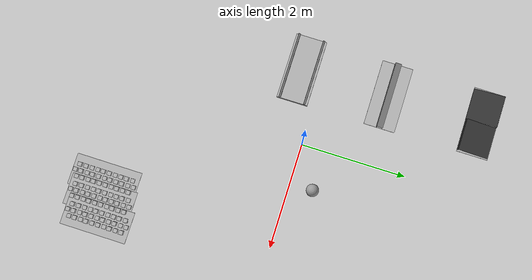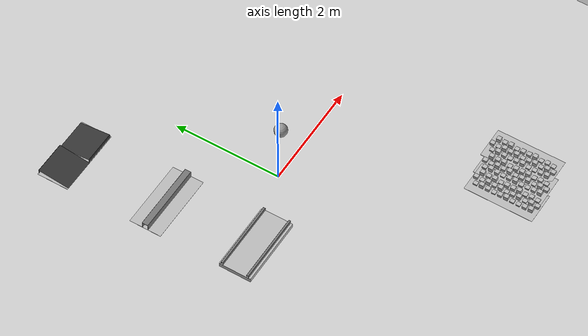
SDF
<sdf version="1.6">
 <world name="default">
  <light name="sun" type="directional">
   <pose>0 0 10 0 -0 0</pose>
   <diffuse>0.8 0.8 0.8 1</diffuse>
   <specular>0.1 0.1 0.1 1</specular>
   <attenuation>
    <range>1000</range>
    <constant>0.9</constant>
    <linear>0.01</linear>
    <quadratic>0.001</quadratic>
   </attenuation>
   <direction>-0.5 0.5 -1</direction>
  </light>
  <model name="ground_plane">
   <static>1</static>
   <link name="link">
    <collision name="collision">
     <geometry><plane><normal>0 0 1</normal><size>100 100</size></plane></geometry>
     <surface><friction><ode><mu>100</mu><mu2>50</mu2></ode></friction></surface>
    </collision>
    <visual name="visual">
     <cast_shadows>0</cast_shadows>
     <geometry><plane><normal>0 0 1</normal><size>100 100</size></plane></geometry>
     <material>
      <script><uri>file://media/materials/scripts/gazebo.material</uri><name>Gazebo/Grey</name></script>
     </material>
    </visual>
   </link>
  </model>
  <gravity>0 0 -9.8</gravity>
  <magnetic_field>6e-06 2.3e-05 -4.2e-05</magnetic_field>
  <atmosphere type="adiabatic"/>
  <physics name="default_physics" default="0" type="ode">
   <max_step_size>0.001</max_step_size>
   <real_time_factor>1</real_time_factor>
   <real_time_update_rate>1000</real_time_update_rate>
  </physics>
  <scene><ambient>0.4 0.4 0.4 1</ambient><background>0.7 0.7 0.7 1</background><shadows>1</shadows></scene>
  <spherical_coordinates>
   <surface_model>EARTH_WGS84</surface_model>
   <latitude_deg>0</latitude_deg>
   <longitude_deg>0</longitude_deg>
   <elevation>0</elevation>
   <heading_deg>0</heading_deg>
  </spherical_coordinates>
  <model name="frc2016_roughterrain">
   <static>1</static>
   <link name="link">
    <visual name="platform">
     <pose>0 0 0.08269 0 -0 0</pose>
     <geometry><box><size>1.27 0.5969 0.003175</size></box></geometry>
    </visual>
    <collision name="platform">
     <pose>0 0 0.08269 0 -0 0</pose>
     <geometry><box><size>1.27 0.5969 0.003175</size></box></geometry>
    </collision>
    <visual name="row1_block1_sm">
     <pose>0.51435 0.1143 0.09698 0 -0 0</pose>
     <geometry><box><size>0.0762 0.0762 0.0254</size></box></geometry>
    </visual>
    <collision name="row1_block1_sm">
     <pose>0.51435 0.1143 0.09698 0 -0 0</pose>
     <geometry><box><size>0.0762 0.0762 0.0254</size></box></geometry>
    </collision>
    <visual name="row1_block2_lg">
     <pose>0.40005 0.1143 0.12238 0 -0 0</pose>
     <geometry><box><size>0.0762 0.0762 0.0762</size></box></geometry>
    </visual>
    <collision name="row1_block2_lg">
     <pose>0.40005 0.1143 0.12238 0 -0 0</pose>
     <geometry><box><size>0.0762 0.0762 0.0762</size></box></geometry>
    </collision>
    <visual name="row1_block3_md">
     <pose>0.28575 0.1143 0.10968 0 -0 0</pose>
     <geometry><box><size>0.0762 0.0762 0.0508</size></box></geometry>
    </visual>
    <collision name="row1_block3_md">
     <pose>0.28575 0.1143 0.10968 0 -0 0</pose>
     <geometry><box><size>0.0762 0.0762 0.0508</size></box></geometry>
    </collision>
    <visual name="row1_block4_sm">
     <pose>0.17145 0.1143 0.09698 0 -0 0</pose>
     <geometry><box><size>0.0762 0.0762 0.0254</size></box></geometry>
    </visual>
    <collision name="row1_block4_sm">
     <pose>0.17145 0.1143 0.09698 0 -0 0</pose>
     <geometry><box><size>0.0762 0.0762 0.0254</size></box></geometry>
    </collision>
    <visual name="row1_block5_md">
     <pose>0.05715 0.1143 0.10968 0 -0 0</pose>
     <geometry><box><size>0.0762 0.0762 0.0508</size></box></geometry>
    </visual>
    <collision name="row1_block5_md">
     <pose>0.05715 0.1143 0.10968 0 -0 0</pose>
     <geometry><box><size>0.0762 0.0762 0.0508</size></box></geometry>
    </collision>
    <visual name="row1_block6_lg">
     <pose>-0.05715 0.1143 0.12238 0 -0 0</pose>
     <geometry><box><size>0.0762 0.0762 0.0762</size></box></geometry>
    </visual>
    <collision name="row1_block6_lg">
     <pose>-0.05715 0.1143 0.12238 0 -0 0</pose>
     <geometry><box><size>0.0762 0.0762 0.0762</size></box></geometry>
    </collision>
    <visual name="row1_block7_sm">
     <pose>-0.17145 0.1143 0.09698 0 -0 0</pose>
     <geometry><box><size>0.0762 0.0762 0.0254</size></box></geometry>
    </visual>
    <collision name="row1_block7_sm">
     <pose>-0.17145 0.1143 0.09698 0 -0 0</pose>
     <geometry><box><size>0.0762 0.0762 0.0254</size></box></geometry>
    </collision>
    <visual name="row1_block8_sm">
     <pose>-0.28575 0.1143 0.09698 0 -0 0</pose>
     <geometry><box><size>0.0762 0.0762 0.0254</size></box></geometry>
    </visual>
    <collision name="row1_block8_sm">
     <pose>-0.28575 0.1143 0.09698 0 -0 0</pose>
     <geometry><box><size>0.0762 0.0762 0.0254</size></box></geometry>
    </collision>
    <visual name="row1_block9_md">
     <pose>-0.40005 0.1143 0.10968 0 -0 0</pose>
     <geometry><box><size>0.0762 0.0762 0.0508</size></box></geometry>
    </visual>
    <collision name="row1_block9_md">
     <pose>-0.40005 0.1143 0.10968 0 -0 0</pose>
     <geometry><box><size>0.0762 0.0762 0.0508</size></box></geometry>
    </collision>
    <visual name="row1_block10_lg">
     <pose>-0.51435 0.1143 0.12238 0 -0 0</pose>
     <geometry><box><size>0.0762 0.0762 0.0762</size></box></geometry>
    </visual>
    <collision name="row1_block10_lg">
     <pose>-0.51435 0.1143 0.12238 0 -0 0</pose>
     <geometry><box><size>0.0762 0.0762 0.0762</size></box></geometry>
    </collision>
    <visual name="row2_block1_md">
     <pose>0.5715 0 0.10968 0 -0 0</pose>
     <geometry><box><size>0.0762 0.0762 0.0508</size></box></geometry>
    </visual>
    <collision name="row2_block1_md">
     <pose>0.5715 0 0.10968 0 -0 0</pose>
     <geometry><box><size>0.0762 0.0762 0.0508</size></box></geometry>
    </collision>
    <visual name="row2_block2_sm">
     <pose>0.4572 0 0.09698 0 -0 0</pose>
     <geometry><box><size>0.0762 0.0762 0.0254</size></box></geometry>
    </visual>
    <collision name="row2_block2_sm">
     <pose>0.4572 0 0.09698 0 -0 0</pose>
     <geometry><box><size>0.0762 0.0762 0.0254</size></box></geometry>
    </collision>
    <visual name="row2_block3_lg">
     <pose>0.3429 0 0.12238 0 -0 0</pose>
     <geometry><box><size>0.0762 0.0762 0.0762</size></box></geometry>
    </visual>
    <collision name="row2_block3_lg">
     <pose>0.3429 0 0.12238 0 -0 0</pose>
     <geometry><box><size>0.0762 0.0762 0.0762</size></box></geometry>
    </collision>
    <visual name="row2_block4_md">
     <pose>0.2286 0 0.10968 0 -0 0</pose>
     <geometry><box><size>0.0762 0.0762 0.0508</size></box></geometry>
    </visual>
    <collision name="row2_block4_md">
     <pose>0.2286 0 0.10968 0 -0 0</pose>
     <geometry><box><size>0.0762 0.0762 0.0508</size></box></geometry>
    </collision>
    <visual name="row2_block5_lg">
     <pose>0.1143 0 0.12238 0 -0 0</pose>
     <geometry><box><size>0.0762 0.0762 0.0762</size></box></geometry>
    </visual>
    <collision name="row2_block5_lg">
     <pose>0.1143 0 0.12238 0 -0 0</pose>
     <geometry><box><size>0.0762 0.0762 0.0762</size></box></geometry>
    </collision>
    <visual name="row2_block6_sm">
     <pose>0 0 0.09698 0 -0 0</pose>
     <geometry><box><size>0.0762 0.0762 0.0254</size></box></geometry>
    </visual>
    <collision name="row2_block6_sm">
     <pose>0 0 0.09698 0 -0 0</pose>
     <geometry><box><size>0.0762 0.0762 0.0254</size></box></geometry>
    </collision>
    <visual name="row2_block7_md">
     <pose>-0.1143 0 0.10968 0 -0 0</pose>
     <geometry><box><size>0.0762 0.0762 0.0508</size></box></geometry>
    </visual>
    <collision name="row2_block7_md">
     <pose>-0.1143 0 0.10968 0 -0 0</pose>
     <geometry><box><size>0.0762 0.0762 0.0508</size></box></geometry>
    </collision>
    <visual name="row2_block8_lg">
     <pose>-0.2286 0 0.12238 0 -0 0</pose>
     <geometry><box><size>0.0762 0.0762 0.0762</size></box></geometry>
    </visual>
    <collision name="row2_block8_lg">
     <pose>-0.2286 0 0.12238 0 -0 0</pose>
     <geometry><box><size>0.0762 0.0762 0.0762</size></box></geometry>
    </collision>
    <visual name="row2_block9_sm">
     <pose>-0.3429 0 0.09698 0 -0 0</pose>
     <geometry><box><size>0.0762 0.0762 0.0254</size></box></geometry>
    </visual>
    <collision name="row2_block9_sm">
     <pose>-0.3429 0 0.09698 0 -0 0</pose>
     <geometry><box><size>0.0762 0.0762 0.0254</size></box></geometry>
    </collision>
    <visual name="row2_block10_lg">
     <pose>-0.4572 0 0.12238 0 -0 0</pose>
     <geometry><box><size>0.0762 0.0762 0.0762</size></box></geometry>
    </visual>
    <collision name="row2_block10_lg">
     <pose>-0.4572 0 0.12238 0 -0 0</pose>
     <geometry><box><size>0.0762 0.0762 0.0762</size></box></geometry>
    </collision>
    <visual name="row2_block11_md">
     <pose>-0.5715 0 0.10968 0 -0 0</pose>
     <geometry><box><size>0.0762 0.0762 0.0508</size></box></geometry>
    </visual>
    <collision name="row2_block11_md">
     <pose>-0.5715 0 0.10968 0 -0 0</pose>
     <geometry><box><size>0.0762 0.0762 0.0508</size></box></geometry>
    </collision>
    <visual name="row3_block1_lg">
     <pose>0.51435 -0.1143 0.12238 0 -0 0</pose>
     <geometry><box><size>0.0762 0.0762 0.0762</size></box></geometry>
    </visual>
    <collision name="row3_block1_lg">
     <pose>0.51435 -0.1143 0.12238 0 -0 0</pose>
     <geometry><box><size>0.0762 0.0762 0.0762</size></box></geometry>
    </collision>
    <visual name="row3_block2_md">
     <pose>0.40005 -0.1143 0.10968 0 -0 0</pose>
     <geometry><box><size>0.0762 0.0762 0.0508</size></box></geometry>
    </visual>
    <collision name="row3_block2_md">
     <pose>0.40005 -0.1143 0.10968 0 -0 0</pose>
     <geometry><box><size>0.0762 0.0762 0.0508</size></box></geometry>
    </collision>
    <visual name="row3_block3_lg">
     <pose>0.28575 -0.1143 0.12238 0 -0 0</pose>
     <geometry><box><size>0.0762 0.0762 0.0762</size></box></geometry>
    </visual>
    <collision name="row3_block3_lg">
     <pose>0.28575 -0.1143 0.12238 0 -0 0</pose>
     <geometry><box><size>0.0762 0.0762 0.0762</size></box></geometry>
    </collision>
    <visual name="row3_block4_sm">
     <pose>0.17145 -0.1143 0.09698 0 -0 0</pose>
     <geometry><box><size>0.0762 0.0762 0.0254</size></box></geometry>
    </visual>
    <collision name="row3_block4_sm">
     <pose>0.17145 -0.1143 0.09698 0 -0 0</pose>
     <geometry><box><size>0.0762 0.0762 0.0254</size></box></geometry>
    </collision>
    <visual name="row3_block5_md">
     <pose>0.05715 -0.1143 0.10968 0 -0 0</pose>
     <geometry><box><size>0.0762 0.0762 0.0508</size></box></geometry>
    </visual>
    <collision name="row3_block5_md">
     <pose>0.05715 -0.1143 0.10968 0 -0 0</pose>
     <geometry><box><size>0.0762 0.0762 0.0508</size></box></geometry>
    </collision>
    <visual name="row3_block6_md">
     <pose>-0.05715 -0.1143 0.10968 0 -0 0</pose>
     <geometry><box><size>0.0762 0.0762 0.0508</size></box></geometry>
    </visual>
    <collision name="row3_block6_md">
     <pose>-0.05715 -0.1143 0.10968 0 -0 0</pose>
     <geometry><box><size>0.0762 0.0762 0.0508</size></box></geometry>
    </collision>
    <visual name="row3_block7_lg">
     <pose>-0.17145 -0.1143 0.12238 0 -0 0</pose>
     <geometry><box><size>0.0762 0.0762 0.0762</size></box></geometry>
    </visual>
    <collision name="row3_block7_lg">
     <pose>-0.17145 -0.1143 0.12238 0 -0 0</pose>
     <geometry><box><size>0.0762 0.0762 0.0762</size></box></geometry>
    </collision>
    <visual name="row3_block8_sm">
     <pose>-0.28575 -0.1143 0.09698 0 -0 0</pose>
     <geometry><box><size>0.0762 0.0762 0.0254</size></box></geometry>
    </visual>
    <collision name="row3_block8_sm">
     <pose>-0.28575 -0.1143 0.09698 0 -0 0</pose>
     <geometry><box><size>0.0762 0.0762 0.0254</size></box></geometry>
    </collision>
    <visual name="row3_block9_md">
     <pose>-0.40005 -0.1143 0.10968 0 -0 0</pose>
     <geometry><box><size>0.0762 0.0762 0.0508</size></box></geometry>
    </visual>
    <collision name="row3_block9_md">
     <pose>-0.40005 -0.1143 0.10968 0 -0 0</pose>
     <geometry><box><size>0.0762 0.0762 0.0508</size></box></geometry>
    </collision>
    <visual name="row3_block10_sm">
     <pose>-0.51435 -0.1143 0.09698 0 -0 0</pose>
     <geometry><box><size>0.0762 0.0762 0.0254</size></box></geometry>
    </visual>
    <collision name="row3_block10_sm">
     <pose>-0.51435 -0.1143 0.09698 0 -0 0</pose>
     <geometry><box><size>0.0762 0.0762 0.0254</size></box></geometry>
    </collision>
   </link>
   <pose>1.70324 -3.32243 -0.086398 0 -0 1.56747</pose>
  </model>
  <model name="frc2016_roughterrain_clone">
   <static>1</static>
   <link name="link">
    <visual name="platform">
     <pose>0 0 0.08269 0 -0 0</pose>
     <geometry><box><size>1.27 0.5969 0.003175</size></box></geometry>
    </visual>
    <collision name="platform">
     <pose>0 0 0.08269 0 -0 0</pose>
     <geometry><box><size>1.27 0.5969 0.003175</size></box></geometry>
    </collision>
    <visual name="row1_block1_sm">
     <pose>0.51435 0.1143 0.09698 0 -0 0</pose>
     <geometry><box><size>0.0762 0.0762 0.0254</size></box></geometry>
    </visual>
    <collision name="row1_block1_sm">
     <pose>0.51435 0.1143 0.09698 0 -0 0</pose>
     <geometry><box><size>0.0762 0.0762 0.0254</size></box></geometry>
    </collision>
    <visual name="row1_block2_lg">
     <pose>0.40005 0.1143 0.12238 0 -0 0</pose>
     <geometry><box><size>0.0762 0.0762 0.0762</size></box></geometry>
    </visual>
    <collision name="row1_block2_lg">
     <pose>0.40005 0.1143 0.12238 0 -0 0</pose>
     <geometry><box><size>0.0762 0.0762 0.0762</size></box></geometry>
    </collision>
    <visual name="row1_block3_md">
     <pose>0.28575 0.1143 0.10968 0 -0 0</pose>
     <geometry><box><size>0.0762 0.0762 0.0508</size></box></geometry>
    </visual>
    <collision name="row1_block3_md">
     <pose>0.28575 0.1143 0.10968 0 -0 0</pose>
     <geometry><box><size>0.0762 0.0762 0.0508</size></box></geometry>
    </collision>
    <visual name="row1_block4_sm">
     <pose>0.17145 0.1143 0.09698 0 -0 0</pose>
     <geometry><box><size>0.0762 0.0762 0.0254</size></box></geometry>
    </visual>
    <collision name="row1_block4_sm">
     <pose>0.17145 0.1143 0.09698 0 -0 0</pose>
     <geometry><box><size>0.0762 0.0762 0.0254</size></box></geometry>
    </collision>
    <visual name="row1_block5_md">
     <pose>0.05715 0.1143 0.10968 0 -0 0</pose>
     <geometry><box><size>0.0762 0.0762 0.0508</size></box></geometry>
    </visual>
    <collision name="row1_block5_md">
     <pose>0.05715 0.1143 0.10968 0 -0 0</pose>
     <geometry><box><size>0.0762 0.0762 0.0508</size></box></geometry>
    </collision>
    <visual name="row1_block6_lg">
     <pose>-0.05715 0.1143 0.12238 0 -0 0</pose>
     <geometry><box><size>0.0762 0.0762 0.0762</size></box></geometry>
    </visual>
    <collision name="row1_block6_lg">
     <pose>-0.05715 0.1143 0.12238 0 -0 0</pose>
     <geometry><box><size>0.0762 0.0762 0.0762</size></box></geometry>
    </collision>
    <visual name="row1_block7_sm">
     <pose>-0.17145 0.1143 0.09698 0 -0 0</pose>
     <geometry><box><size>0.0762 0.0762 0.0254</size></box></geometry>
    </visual>
    <collision name="row1_block7_sm">
     <pose>-0.17145 0.1143 0.09698 0 -0 0</pose>
     <geometry><box><size>0.0762 0.0762 0.0254</size></box></geometry>
    </collision>
    <visual name="row1_block8_sm">
     <pose>-0.28575 0.1143 0.09698 0 -0 0</pose>
     <geometry><box><size>0.0762 0.0762 0.0254</size></box></geometry>
    </visual>
    <collision name="row1_block8_sm">
     <pose>-0.28575 0.1143 0.09698 0 -0 0</pose>
     <geometry><box><size>0.0762 0.0762 0.0254</size></box></geometry>
    </collision>
    <visual name="row1_block9_md">
     <pose>-0.40005 0.1143 0.10968 0 -0 0</pose>
     <geometry><box><size>0.0762 0.0762 0.0508</size></box></geometry>
    </visual>
    <collision name="row1_block9_md">
     <pose>-0.40005 0.1143 0.10968 0 -0 0</pose>
     <geometry><box><size>0.0762 0.0762 0.0508</size></box></geometry>
    </collision>
    <visual name="row1_block10_lg">
     <pose>-0.51435 0.1143 0.12238 0 -0 0</pose>
     <geometry><box><size>0.0762 0.0762 0.0762</size></box></geometry>
    </visual>
    <collision name="row1_block10_lg">
     <pose>-0.51435 0.1143 0.12238 0 -0 0</pose>
     <geometry><box><size>0.0762 0.0762 0.0762</size></box></geometry>
    </collision>
    <visual name="row2_block1_md">
     <pose>0.5715 0 0.10968 0 -0 0</pose>
     <geometry><box><size>0.0762 0.0762 0.0508</size></box></geometry>
    </visual>
    <collision name="row2_block1_md">
     <pose>0.5715 0 0.10968 0 -0 0</pose>
     <geometry><box><size>0.0762 0.0762 0.0508</size></box></geometry>
    </collision>
    <visual name="row2_block2_sm">
     <pose>0.4572 0 0.09698 0 -0 0</pose>
     <geometry><box><size>0.0762 0.0762 0.0254</size></box></geometry>
    </visual>
    <collision name="row2_block2_sm">
     <pose>0.4572 0 0.09698 0 -0 0</pose>
     <geometry><box><size>0.0762 0.0762 0.0254</size></box></geometry>
    </collision>
    <visual name="row2_block3_lg">
     <pose>0.3429 0 0.12238 0 -0 0</pose>
     <geometry><box><size>0.0762 0.0762 0.0762</size></box></geometry>
    </visual>
    <collision name="row2_block3_lg">
     <pose>0.3429 0 0.12238 0 -0 0</pose>
     <geometry><box><size>0.0762 0.0762 0.0762</size></box></geometry>
    </collision>
    <visual name="row2_block4_md">
     <pose>0.2286 0 0.10968 0 -0 0</pose>
     <geometry><box><size>0.0762 0.0762 0.0508</size></box></geometry>
    </visual>
    <collision name="row2_block4_md">
     <pose>0.2286 0 0.10968 0 -0 0</pose>
     <geometry><box><size>0.0762 0.0762 0.0508</size></box></geometry>
    </collision>
    <visual name="row2_block5_lg">
     <pose>0.1143 0 0.12238 0 -0 0</pose>
     <geometry><box><size>0.0762 0.0762 0.0762</size></box></geometry>
    </visual>
    <collision name="row2_block5_lg">
     <pose>0.1143 0 0.12238 0 -0 0</pose>
     <geometry><box><size>0.0762 0.0762 0.0762</size></box></geometry>
    </collision>
    <visual name="row2_block6_sm">
     <pose>0 0 0.09698 0 -0 0</pose>
     <geometry><box><size>0.0762 0.0762 0.0254</size></box></geometry>
    </visual>
    <collision name="row2_block6_sm">
     <pose>0 0 0.09698 0 -0 0</pose>
     <geometry><box><size>0.0762 0.0762 0.0254</size></box></geometry>
    </collision>
    <visual name="row2_block7_md">
     <pose>-0.1143 0 0.10968 0 -0 0</pose>
     <geometry><box><size>0.0762 0.0762 0.0508</size></box></geometry>
    </visual>
    <collision name="row2_block7_md">
     <pose>-0.1143 0 0.10968 0 -0 0</pose>
     <geometry><box><size>0.0762 0.0762 0.0508</size></box></geometry>
    </collision>
    <visual name="row2_block8_lg">
     <pose>-0.2286 0 0.12238 0 -0 0</pose>
     <geometry><box><size>0.0762 0.0762 0.0762</size></box></geometry>
    </visual>
    <collision name="row2_block8_lg">
     <pose>-0.2286 0 0.12238 0 -0 0</pose>
     <geometry><box><size>0.0762 0.0762 0.0762</size></box></geometry>
    </collision>
    <visual name="row2_block9_sm">
     <pose>-0.3429 0 0.09698 0 -0 0</pose>
     <geometry><box><size>0.0762 0.0762 0.0254</size></box></geometry>
    </visual>
    <collision name="row2_block9_sm">
     <pose>-0.3429 0 0.09698 0 -0 0</pose>
     <geometry><box><size>0.0762 0.0762 0.0254</size></box></geometry>
    </collision>
    <visual name="row2_block10_lg">
     <pose>-0.4572 0 0.12238 0 -0 0</pose>
     <geometry><box><size>0.0762 0.0762 0.0762</size></box></geometry>
    </visual>
    <collision name="row2_block10_lg">
     <pose>-0.4572 0 0.12238 0 -0 0</pose>
     <geometry><box><size>0.0762 0.0762 0.0762</size></box></geometry>
    </collision>
    <visual name="row2_block11_md">
     <pose>-0.5715 0 0.10968 0 -0 0</pose>
     <geometry><box><size>0.0762 0.0762 0.0508</size></box></geometry>
    </visual>
    <collision name="row2_block11_md">
     <pose>-0.5715 0 0.10968 0 -0 0</pose>
     <geometry><box><size>0.0762 0.0762 0.0508</size></box></geometry>
    </collision>
    <visual name="row3_block1_lg">
     <pose>0.51435 -0.1143 0.12238 0 -0 0</pose>
     <geometry><box><size>0.0762 0.0762 0.0762</size></box></geometry>
    </visual>
    <collision name="row3_block1_lg">
     <pose>0.51435 -0.1143 0.12238 0 -0 0</pose>
     <geometry><box><size>0.0762 0.0762 0.0762</size></box></geometry>
    </collision>
    <visual name="row3_block2_md">
     <pose>0.40005 -0.1143 0.10968 0 -0 0</pose>
     <geometry><box><size>0.0762 0.0762 0.0508</size></box></geometry>
    </visual>
    <collision name="row3_block2_md">
     <pose>0.40005 -0.1143 0.10968 0 -0 0</pose>
     <geometry><box><size>0.0762 0.0762 0.0508</size></box></geometry>
    </collision>
    <visual name="row3_block3_lg">
     <pose>0.28575 -0.1143 0.12238 0 -0 0</pose>
     <geometry><box><size>0.0762 0.0762 0.0762</size></box></geometry>
    </visual>
    <collision name="row3_block3_lg">
     <pose>0.28575 -0.1143 0.12238 0 -0 0</pose>
     <geometry><box><size>0.0762 0.0762 0.0762</size></box></geometry>
    </collision>
    <visual name="row3_block4_sm">
     <pose>0.17145 -0.1143 0.09698 0 -0 0</pose>
     <geometry><box><size>0.0762 0.0762 0.0254</size></box></geometry>
    </visual>
    <collision name="row3_block4_sm">
     <pose>0.17145 -0.1143 0.09698 0 -0 0</pose>
     <geometry><box><size>0.0762 0.0762 0.0254</size></box></geometry>
    </collision>
    <visual name="row3_block5_md">
     <pose>0.05715 -0.1143 0.10968 0 -0 0</pose>
     <geometry><box><size>0.0762 0.0762 0.0508</size></box></geometry>
    </visual>
    <collision name="row3_block5_md">
     <pose>0.05715 -0.1143 0.10968 0 -0 0</pose>
     <geometry><box><size>0.0762 0.0762 0.0508</size></box></geometry>
    </collision>
    <visual name="row3_block6_md">
     <pose>-0.05715 -0.1143 0.10968 0 -0 0</pose>
     <geometry><box><size>0.0762 0.0762 0.0508</size></box></geometry>
    </visual>
    <collision name="row3_block6_md">
     <pose>-0.05715 -0.1143 0.10968 0 -0 0</pose>
     <geometry><box><size>0.0762 0.0762 0.0508</size></box></geometry>
    </collision>
    <visual name="row3_block7_lg">
     <pose>-0.17145 -0.1143 0.12238 0 -0 0</pose>
     <geometry><box><size>0.0762 0.0762 0.0762</size></box></geometry>
    </visual>
    <collision name="row3_block7_lg">
     <pose>-0.17145 -0.1143 0.12238 0 -0 0</pose>
     <geometry><box><size>0.0762 0.0762 0.0762</size></box></geometry>
    </collision>
    <visual name="row3_block8_sm">
     <pose>-0.28575 -0.1143 0.09698 0 -0 0</pose>
     <geometry><box><size>0.0762 0.0762 0.0254</size></box></geometry>
    </visual>
    <collision name="row3_block8_sm">
     <pose>-0.28575 -0.1143 0.09698 0 -0 0</pose>
     <geometry><box><size>0.0762 0.0762 0.0254</size></box></geometry>
    </collision>
    <visual name="row3_block9_md">
     <pose>-0.40005 -0.1143 0.10968 0 -0 0</pose>
     <geometry><box><size>0.0762 0.0762 0.0508</size></box></geometry>
    </visual>
    <collision name="row3_block9_md">
     <pose>-0.40005 -0.1143 0.10968 0 -0 0</pose>
     <geometry><box><size>0.0762 0.0762 0.0508</size></box></geometry>
    </collision>
    <visual name="row3_block10_sm">
     <pose>-0.51435 -0.1143 0.09698 0 -0 0</pose>
     <geometry><box><size>0.0762 0.0762 0.0254</size></box></geometry>
    </visual>
    <collision name="row3_block10_sm">
     <pose>-0.51435 -0.1143 0.09698 0 -0 0</pose>
     <geometry><box><size>0.0762 0.0762 0.0254</size></box></geometry>
    </collision>
   </link>
   <pose>2.07302 -3.28394 -0.086398 0 -0 1.56747</pose>
  </model>
  <model name="frc2016_roughterrain_clone_0">
   <static>1</static>
   <link name="link">
    <visual name="platform">
     <pose>0 0 0.08269 0 -0 0</pose>
     <geometry><box><size>1.27 0.5969 0.003175</size></box></geometry>
    </visual>
    <collision name="platform">
     <pose>0 0 0.08269 0 -0 0</pose>
     <geometry><box><size>1.27 0.5969 0.003175</size></box></geometry>
    </collision>
    <visual name="row1_block1_sm">
     <pose>0.51435 0.1143 0.09698 0 -0 0</pose>
     <geometry><box><size>0.0762 0.0762 0.0254</size></box></geometry>
    </visual>
    <collision name="row1_block1_sm">
     <pose>0.51435 0.1143 0.09698 0 -0 0</pose>
     <geometry><box><size>0.0762 0.0762 0.0254</size></box></geometry>
    </collision>
    <visual name="row1_block2_lg">
     <pose>0.40005 0.1143 0.12238 0 -0 0</pose>
     <geometry><box><size>0.0762 0.0762 0.0762</size></box></geometry>
    </visual>
    <collision name="row1_block2_lg">
     <pose>0.40005 0.1143 0.12238 0 -0 0</pose>
     <geometry><box><size>0.0762 0.0762 0.0762</size></box></geometry>
    </collision>
    <visual name="row1_block3_md">
     <pose>0.28575 0.1143 0.10968 0 -0 0</pose>
     <geometry><box><size>0.0762 0.0762 0.0508</size></box></geometry>
    </visual>
    <collision name="row1_block3_md">
     <pose>0.28575 0.1143 0.10968 0 -0 0</pose>
     <geometry><box><size>0.0762 0.0762 0.0508</size></box></geometry>
    </collision>
    <visual name="row1_block4_sm">
     <pose>0.17145 0.1143 0.09698 0 -0 0</pose>
     <geometry><box><size>0.0762 0.0762 0.0254</size></box></geometry>
    </visual>
    <collision name="row1_block4_sm">
     <pose>0.17145 0.1143 0.09698 0 -0 0</pose>
     <geometry><box><size>0.0762 0.0762 0.0254</size></box></geometry>
    </collision>
    <visual name="row1_block5_md">
     <pose>0.05715 0.1143 0.10968 0 -0 0</pose>
     <geometry><box><size>0.0762 0.0762 0.0508</size></box></geometry>
    </visual>
    <collision name="row1_block5_md">
     <pose>0.05715 0.1143 0.10968 0 -0 0</pose>
     <geometry><box><size>0.0762 0.0762 0.0508</size></box></geometry>
    </collision>
    <visual name="row1_block6_lg">
     <pose>-0.05715 0.1143 0.12238 0 -0 0</pose>
     <geometry><box><size>0.0762 0.0762 0.0762</size></box></geometry>
    </visual>
    <collision name="row1_block6_lg">
     <pose>-0.05715 0.1143 0.12238 0 -0 0</pose>
     <geometry><box><size>0.0762 0.0762 0.0762</size></box></geometry>
    </collision>
    <visual name="row1_block7_sm">
     <pose>-0.17145 0.1143 0.09698 0 -0 0</pose>
     <geometry><box><size>0.0762 0.0762 0.0254</size></box></geometry>
    </visual>
    <collision name="row1_block7_sm">
     <pose>-0.17145 0.1143 0.09698 0 -0 0</pose>
     <geometry><box><size>0.0762 0.0762 0.0254</size></box></geometry>
    </collision>
    <visual name="row1_block8_sm">
     <pose>-0.28575 0.1143 0.09698 0 -0 0</pose>
     <geometry><box><size>0.0762 0.0762 0.0254</size></box></geometry>
    </visual>
    <collision name="row1_block8_sm">
     <pose>-0.28575 0.1143 0.09698 0 -0 0</pose>
     <geometry><box><size>0.0762 0.0762 0.0254</size></box></geometry>
    </collision>
    <visual name="row1_block9_md">
     <pose>-0.40005 0.1143 0.10968 0 -0 0</pose>
     <geometry><box><size>0.0762 0.0762 0.0508</size></box></geometry>
    </visual>
    <collision name="row1_block9_md">
     <pose>-0.40005 0.1143 0.10968 0 -0 0</pose>
     <geometry><box><size>0.0762 0.0762 0.0508</size></box></geometry>
    </collision>
    <visual name="row1_block10_lg">
     <pose>-0.51435 0.1143 0.12238 0 -0 0</pose>
     <geometry><box><size>0.0762 0.0762 0.0762</size></box></geometry>
    </visual>
    <collision name="row1_block10_lg">
     <pose>-0.51435 0.1143 0.12238 0 -0 0</pose>
     <geometry><box><size>0.0762 0.0762 0.0762</size></box></geometry>
    </collision>
    <visual name="row2_block1_md">
     <pose>0.5715 0 0.10968 0 -0 0</pose>
     <geometry><box><size>0.0762 0.0762 0.0508</size></box></geometry>
    </visual>
    <collision name="row2_block1_md">
     <pose>0.5715 0 0.10968 0 -0 0</pose>
     <geometry><box><size>0.0762 0.0762 0.0508</size></box></geometry>
    </collision>
    <visual name="row2_block2_sm">
     <pose>0.4572 0 0.09698 0 -0 0</pose>
     <geometry><box><size>0.0762 0.0762 0.0254</size></box></geometry>
    </visual>
    <collision name="row2_block2_sm">
     <pose>0.4572 0 0.09698 0 -0 0</pose>
     <geometry><box><size>0.0762 0.0762 0.0254</size></box></geometry>
    </collision>
    <visual name="row2_block3_lg">
     <pose>0.3429 0 0.12238 0 -0 0</pose>
     <geometry><box><size>0.0762 0.0762 0.0762</size></box></geometry>
    </visual>
    <collision name="row2_block3_lg">
     <pose>0.3429 0 0.12238 0 -0 0</pose>
     <geometry><box><size>0.0762 0.0762 0.0762</size></box></geometry>
    </collision>
    <visual name="row2_block4_md">
     <pose>0.2286 0 0.10968 0 -0 0</pose>
     <geometry><box><size>0.0762 0.0762 0.0508</size></box></geometry>
    </visual>
    <collision name="row2_block4_md">
     <pose>0.2286 0 0.10968 0 -0 0</pose>
     <geometry><box><size>0.0762 0.0762 0.0508</size></box></geometry>
    </collision>
    <visual name="row2_block5_lg">
     <pose>0.1143 0 0.12238 0 -0 0</pose>
     <geometry><box><size>0.0762 0.0762 0.0762</size></box></geometry>
    </visual>
    <collision name="row2_block5_lg">
     <pose>0.1143 0 0.12238 0 -0 0</pose>
     <geometry><box><size>0.0762 0.0762 0.0762</size></box></geometry>
    </collision>
    <visual name="row2_block6_sm">
     <pose>0 0 0.09698 0 -0 0</pose>
     <geometry><box><size>0.0762 0.0762 0.0254</size></box></geometry>
    </visual>
    <collision name="row2_block6_sm">
     <pose>0 0 0.09698 0 -0 0</pose>
     <geometry><box><size>0.0762 0.0762 0.0254</size></box></geometry>
    </collision>
    <visual name="row2_block7_md">
     <pose>-0.1143 0 0.10968 0 -0 0</pose>
     <geometry><box><size>0.0762 0.0762 0.0508</size></box></geometry>
    </visual>
    <collision name="row2_block7_md">
     <pose>-0.1143 0 0.10968 0 -0 0</pose>
     <geometry><box><size>0.0762 0.0762 0.0508</size></box></geometry>
    </collision>
    <visual name="row2_block8_lg">
     <pose>-0.2286 0 0.12238 0 -0 0</pose>
     <geometry><box><size>0.0762 0.0762 0.0762</size></box></geometry>
    </visual>
    <collision name="row2_block8_lg">
     <pose>-0.2286 0 0.12238 0 -0 0</pose>
     <geometry><box><size>0.0762 0.0762 0.0762</size></box></geometry>
    </collision>
    <visual name="row2_block9_sm">
     <pose>-0.3429 0 0.09698 0 -0 0</pose>
     <geometry><box><size>0.0762 0.0762 0.0254</size></box></geometry>
    </visual>
    <collision name="row2_block9_sm">
     <pose>-0.3429 0 0.09698 0 -0 0</pose>
     <geometry><box><size>0.0762 0.0762 0.0254</size></box></geometry>
    </collision>
    <visual name="row2_block10_lg">
     <pose>-0.4572 0 0.12238 0 -0 0</pose>
     <geometry><box><size>0.0762 0.0762 0.0762</size></box></geometry>
    </visual>
    <collision name="row2_block10_lg">
     <pose>-0.4572 0 0.12238 0 -0 0</pose>
     <geometry><box><size>0.0762 0.0762 0.0762</size></box></geometry>
    </collision>
    <visual name="row2_block11_md">
     <pose>-0.5715 0 0.10968 0 -0 0</pose>
     <geometry><box><size>0.0762 0.0762 0.0508</size></box></geometry>
    </visual>
    <collision name="row2_block11_md">
     <pose>-0.5715 0 0.10968 0 -0 0</pose>
     <geometry><box><size>0.0762 0.0762 0.0508</size></box></geometry>
    </collision>
    <visual name="row3_block1_lg">
     <pose>0.51435 -0.1143 0.12238 0 -0 0</pose>
     <geometry><box><size>0.0762 0.0762 0.0762</size></box></geometry>
    </visual>
    <collision name="row3_block1_lg">
     <pose>0.51435 -0.1143 0.12238 0 -0 0</pose>
     <geometry><box><size>0.0762 0.0762 0.0762</size></box></geometry>
    </collision>
    <visual name="row3_block2_md">
     <pose>0.40005 -0.1143 0.10968 0 -0 0</pose>
     <geometry><box><size>0.0762 0.0762 0.0508</size></box></geometry>
    </visual>
    <collision name="row3_block2_md">
     <pose>0.40005 -0.1143 0.10968 0 -0 0</pose>
     <geometry><box><size>0.0762 0.0762 0.0508</size></box></geometry>
    </collision>
    <visual name="row3_block3_lg">
     <pose>0.28575 -0.1143 0.12238 0 -0 0</pose>
     <geometry><box><size>0.0762 0.0762 0.0762</size></box></geometry>
    </visual>
    <collision name="row3_block3_lg">
     <pose>0.28575 -0.1143 0.12238 0 -0 0</pose>
     <geometry><box><size>0.0762 0.0762 0.0762</size></box></geometry>
    </collision>
    <visual name="row3_block4_sm">
     <pose>0.17145 -0.1143 0.09698 0 -0 0</pose>
     <geometry><box><size>0.0762 0.0762 0.0254</size></box></geometry>
    </visual>
    <collision name="row3_block4_sm">
     <pose>0.17145 -0.1143 0.09698 0 -0 0</pose>
     <geometry><box><size>0.0762 0.0762 0.0254</size></box></geometry>
    </collision>
    <visual name="row3_block5_md">
     <pose>0.05715 -0.1143 0.10968 0 -0 0</pose>
     <geometry><box><size>0.0762 0.0762 0.0508</size></box></geometry>
    </visual>
    <collision name="row3_block5_md">
     <pose>0.05715 -0.1143 0.10968 0 -0 0</pose>
     <geometry><box><size>0.0762 0.0762 0.0508</size></box></geometry>
    </collision>
    <visual name="row3_block6_md">
     <pose>-0.05715 -0.1143 0.10968 0 -0 0</pose>
     <geometry><box><size>0.0762 0.0762 0.0508</size></box></geometry>
    </visual>
    <collision name="row3_block6_md">
     <pose>-0.05715 -0.1143 0.10968 0 -0 0</pose>
     <geometry><box><size>0.0762 0.0762 0.0508</size></box></geometry>
    </collision>
    <visual name="row3_block7_lg">
     <pose>-0.17145 -0.1143 0.12238 0 -0 0</pose>
     <geometry><box><size>0.0762 0.0762 0.0762</size></box></geometry>
    </visual>
    <collision name="row3_block7_lg">
     <pose>-0.17145 -0.1143 0.12238 0 -0 0</pose>
     <geometry><box><size>0.0762 0.0762 0.0762</size></box></geometry>
    </collision>
    <visual name="row3_block8_sm">
     <pose>-0.28575 -0.1143 0.09698 0 -0 0</pose>
     <geometry><box><size>0.0762 0.0762 0.0254</size></box></geometry>
    </visual>
    <collision name="row3_block8_sm">
     <pose>-0.28575 -0.1143 0.09698 0 -0 0</pose>
     <geometry><box><size>0.0762 0.0762 0.0254</size></box></geometry>
    </collision>
    <visual name="row3_block9_md">
     <pose>-0.40005 -0.1143 0.10968 0 -0 0</pose>
     <geometry><box><size>0.0762 0.0762 0.0508</size></box></geometry>
    </visual>
    <collision name="row3_block9_md">
     <pose>-0.40005 -0.1143 0.10968 0 -0 0</pose>
     <geometry><box><size>0.0762 0.0762 0.0508</size></box></geometry>
    </collision>
    <visual name="row3_block10_sm">
     <pose>-0.51435 -0.1143 0.09698 0 -0 0</pose>
     <geometry><box><size>0.0762 0.0762 0.0254</size></box></geometry>
    </visual>
    <collision name="row3_block10_sm">
     <pose>-0.51435 -0.1143 0.09698 0 -0 0</pose>
     <geometry><box><size>0.0762 0.0762 0.0254</size></box></geometry>
    </collision>
   </link>
   <pose>2.4407 -3.2123 -0.086398 0 -0 1.56747</pose>
  </model>
  <model name="test_terrian_slope_and_stairs_0">
   <link name="link_0">
    <pose>0 0 0 1.5708 -0 0</pose>
    <inertial>
     <mass>1</mass>
     <inertia>
      <ixx>0.166667</ixx>
      <ixy>0</ixy>
      <ixz>0</ixz>
      <iyy>0.166667</iyy>
      <iyz>0</iyz>
      <izz>0.166667</izz>
     </inertia>
    </inertial>
    <visual name="visual">
     <geometry><mesh><uri>/home/hitstar/Desktop/Part1.STL</uri><scale>1 1 1</scale></mesh></geometry>
     <material>
      <lighting>1</lighting>
      <script><uri>file://media/materials/scripts/gazebo.material</uri><name>Gazebo/Grey</name></script>
      <ambient>0.3 0.3 0.3 1</ambient>
      <diffuse>0.7 0.7 0.7 1</diffuse>
      <specular>0.01 0.01 0.01 1</specular>
      <emissive>0 0 0 1</emissive>
      <shader type="vertex"><normal_map>__default__</normal_map></shader>
     </material>
    </visual>
    <collision name="collision">
     <geometry><mesh><uri>/home/hitstar/Desktop/Part1.STL</uri><scale>1 1 1</scale></mesh></geometry>
     <surface>
      <friction>
       <ode><mu>1</mu><mu2>1</mu2><fdir1>0 0 0</fdir1><slip1>0</slip1><slip2>0</slip2></ode>
       <torsional>
        <coefficient>1</coefficient>
        <patch_radius>0</patch_radius>
        <surface_radius>0</surface_radius>
        <use_patch_radius>1</use_patch_radius>
        <ode><slip>0</slip></ode>
       </torsional>
      </friction>
      <bounce><restitution_coefficient>0</restitution_coefficient><threshold>1e+06</threshold></bounce>
      <contact>
       <collide_without_contact>0</collide_without_contact>
       <collide_without_contact_bitmask>1</collide_without_contact_bitmask>
       <collide_bitmask>1</collide_bitmask>
       <ode>
        <soft_cfm>0</soft_cfm>
        <soft_erp>0.2</soft_erp>
        <kp>1e+13</kp>
        <kd>1</kd>
        <max_vel>0.01</max_vel>
        <min_depth>0</min_depth>
       </ode>
       <bullet>
        <split_impulse>1</split_impulse>
        <split_impulse_penetration_threshold>-0.01</split_impulse_penetration_threshold>
        <soft_cfm>0</soft_cfm>
        <soft_erp>0.2</soft_erp>
        <kp>1e+13</kp>
        <kd>1</kd>
       </bullet>
      </contact>
     </surface>
    </collision>
   </link>
   <static>1</static>
   <pose>6.83992 -1.74389 -0.016855 0 0 -1.57538</pose>
  </model>
  <model name="frc2016_ramparts">
   <static>1</static>
   <link name="link">
    <visual name="platform">
     <pose>0 0 0.06967 0 -0 0</pose>
     <geometry><box><size>1.27 0.5969 0.003175</size></box></geometry>
    </visual>
    <collision name="platform">
     <pose>0 0 0.06967 0 -0 0</pose>
     <geometry><box><size>1.27 0.5969 0.003175</size></box></geometry>
    </collision>
    <visual name="ramp1">
     <pose>0.30472 0.00588 0.1109 -0.13 0 0</pose>
     <geometry><box><size>0.60957 0.588891 0.00462</size></box></geometry>
     <material><ambient>0.2 0.2 0.2 1</ambient><diffuse>0.2 0.2 0.2 1</diffuse></material>
    </visual>
    <collision name="ramp1">
     <pose>0.30472 0.00588 0.1109 -0.13 0 0</pose>
     <geometry><box><size>0.60957 0.588891 0.00462</size></box></geometry>
    </collision>
    <visual name="up1">
     <pose>0.30472 -0.28806 0.11072 0 -0 0</pose>
     <geometry><box><size>0.60957 0.00462 0.07872</size></box></geometry>
     <material><ambient>0.2 0.2 0.2 1</ambient><diffuse>0.2 0.2 0.2 1</diffuse></material>
    </visual>
    <collision name="up1">
     <pose>0.30472 -0.28806 0.11072 0 -0 0</pose>
     <geometry><box><size>0.60957 0.00462 0.07872</size></box></geometry>
    </collision>
    <visual name="ramp2">
     <pose>-0.30472 -0.00619 0.1109 0.13 -0 0</pose>
     <geometry><box><size>0.60957 0.588891 0.00462</size></box></geometry>
     <material><ambient>0.2 0.2 0.2 1</ambient><diffuse>0.2 0.2 0.2 1</diffuse></material>
    </visual>
    <collision name="ramp2">
     <pose>-0.30472 -0.00619 0.1109 0.13 -0 0</pose>
     <geometry><box><size>0.60957 0.588891 0.00462</size></box></geometry>
    </collision>
    <visual name="up2">
     <pose>-0.30472 0.28806 0.11072 0 -0 0</pose>
     <geometry><box><size>0.60957 0.00462 0.07872</size></box></geometry>
     <material><ambient>0.2 0.2 0.2 1</ambient><diffuse>0.2 0.2 0.2 1</diffuse></material>
    </visual>
    <collision name="up2">
     <pose>-0.30472 0.28806 0.11072 0 -0 0</pose>
     <geometry><box><size>0.60957 0.00462 0.07872</size></box></geometry>
    </collision>
   </link>
   <pose>-1.39394 3.08885 -0.070276 0 -0 0</pose>
  </model>
  <model name="frc2016_rockwall">
   <static>1</static>
   <link name="link">
    <inertial>
     <mass>10</mass>
     <pose>0 0 0.08974 0 -0 0</pose>
     <inertia><ixx>0.327091</ixx><ixy>0</ixy><ixz>0</ixz><iyy>1.37417</iyy><iyz>0</iyz><izz>1.64109</izz></inertia>
    </inertial>
    <visual name="platform">
     <pose>0 0 0.06432 0 -0 0</pose>
     <geometry><box><size>1.27 0.5969 0.003175</size></box></geometry>
    </visual>
    <collision name="platform">
     <pose>0 0 0.06432 0 -0 0</pose>
     <geometry><box><size>1.27 0.5969 0.003175</size></box></geometry>
    </collision>
    <visual name="up1">
     <pose>0 0.05166 0.12537 0 -0 0</pose>
     <geometry><box><size>1.27 0.00462 0.11892</size></box></geometry>
     <material><ambient>0.46 0.46 0.46 1</ambient><diffuse>0.46 0.46 0.46 1</diffuse></material>
    </visual>
    <collision name="up1">
     <pose>0 0.05166 0.12537 0 -0 0</pose>
     <geometry><box><size>1.27 0.00462 0.11892</size></box></geometry>
    </collision>
    <visual name="up2">
     <pose>0 -0.05801 0.12537 0 -0 0</pose>
     <geometry><box><size>1.27 0.00462 0.11892</size></box></geometry>
     <material><ambient>0.46 0.46 0.46 1</ambient><diffuse>0.46 0.46 0.46 1</diffuse></material>
    </visual>
    <collision name="up2">
     <pose>0 -0.05801 0.12537 0 -0 0</pose>
     <geometry><box><size>1.27 0.00462 0.11892</size></box></geometry>
    </collision>
    <visual name="top">
     <pose>0 -0.00249 0.18252 0 -0 0</pose>
     <geometry><box><size>1.27 0.1143 0.00462</size></box></geometry>
     <material><ambient>0.46 0.46 0.46 1</ambient><diffuse>0.46 0.46 0.46 1</diffuse></material>
    </visual>
    <collision name="top">
     <pose>0 -0.00249 0.18252 0 -0 0</pose>
     <geometry><box><size>1.27 0.1143 0.00462</size></box></geometry>
    </collision>
   </link>
   <pose>-1.3721 1.2854 -0.071452 0 -0 0</pose>
  </model>
  <model name="frc2016_moat">
   <static>1</static>
   <link name="link">
    <inertial>
     <mass>10</mass>
     <pose>0 0 0.06738 0 -0 0</pose>
     <inertia><ixx>0.312195</ixx><ixy>0</ixy><ixz>0</ixz><iyy>1.35927</iyy><iyz>0</iyz><izz>1.64109</izz></inertia>
    </inertial>
    <visual name="platform">
     <pose>0 0 0.0381 0 -0 0</pose>
     <geometry><box><size>1.27 0.5969 0.0762</size></box></geometry>
    </visual>
    <collision name="platform">
     <pose>0 0 0.0381 0 -0 0</pose>
     <geometry><box><size>1.27 0.5969 0.0762</size></box></geometry>
    </collision>
    <visual name="tube1_side1">
     <pose>0 -0.25876 0.10301 0 -0 0</pose>
     <geometry><box><size>1.27 0.003175 0.0635</size></box></geometry>
     <material><ambient>0.46 0.46 0.46 1</ambient><diffuse>0.46 0.46 0.46 1</diffuse></material>
    </visual>
    <collision name="tube1_side1">
     <pose>0 -0.25876 0.10301 0 -0 0</pose>
     <geometry><box><size>1.27 0.003175 0.0635</size></box></geometry>
    </collision>
    <visual name="tube1_side2">
     <pose>0 -0.22384 0.10301 0 -0 0</pose>
     <geometry><box><size>1.27 0.003175 0.0635</size></box></geometry>
     <material><ambient>0.46 0.46 0.46 1</ambient><diffuse>0.46 0.46 0.46 1</diffuse></material>
    </visual>
    <collision name="tube1_side2">
     <pose>0 -0.22384 0.10301 0 -0 0</pose>
     <geometry><box><size>1.27 0.003175 0.0635</size></box></geometry>
    </collision>
    <visual name="tube1_top">
     <pose>0 -0.2413 0.13317 0 -0 0</pose>
     <geometry><box><size>1.27 0.0381 0.003175</size></box></geometry>
     <material><ambient>0.46 0.46 0.46 1</ambient><diffuse>0.46 0.46 0.46 1</diffuse></material>
    </visual>
    <collision name="tube1_top">
     <pose>0 -0.2413 0.13317 0 -0 0</pose>
     <geometry><box><size>1.27 0.0381 0.003175</size></box></geometry>
    </collision>
    <visual name="tube2_side1">
     <pose>0 0.22384 0.10301 0 -0 0</pose>
     <geometry><box><size>1.27 0.003175 0.0635</size></box></geometry>
     <material><ambient>0.46 0.46 0.46 1</ambient><diffuse>0.46 0.46 0.46 1</diffuse></material>
    </visual>
    <collision name="tube2_side1">
     <pose>0 0.22384 0.10301 0 -0 0</pose>
     <geometry><box><size>1.27 0.003175 0.0635</size></box></geometry>
    </collision>
    <visual name="tube2_side2">
     <pose>0 0.25876 0.10301 0 -0 0</pose>
     <geometry><box><size>1.27 0.003175 0.0635</size></box></geometry>
     <material><ambient>0.46 0.46 0.46 1</ambient><diffuse>0.46 0.46 0.46 1</diffuse></material>
    </visual>
    <collision name="tube2_side2">
     <pose>0 0.25876 0.10301 0 -0 0</pose>
     <geometry><box><size>1.27 0.003175 0.0635</size></box></geometry>
    </collision>
    <visual name="tube2_top">
     <pose>0 0.2413 0.13317 0 -0 0</pose>
     <geometry><box><size>1.27 0.0381 0.003175</size></box></geometry>
     <material><ambient>0.46 0.46 0.46 1</ambient><diffuse>0.46 0.46 0.46 1</diffuse></material>
    </visual>
    <collision name="tube2_top">
     <pose>0 0.2413 0.13317 0 -0 0</pose>
     <geometry><box><size>1.27 0.0381 0.003175</size></box></geometry>
    </collision>
   </link>
   <pose>-1.35955 -0.4274 0 0 -0 0</pose>
  </model>
  <model name="Untitled">
   <link name="Untitled::link_1">
    <inertial>
     <mass>1</mass>
     <inertia><ixx>0.1</ixx><ixy>0</ixy><ixz>0</ixz><iyy>0.1</iyy><iyz>0</iyz><izz>0.1</izz></inertia>
    </inertial>
    <visual name="visual">
     <geometry><sphere><radius>0.12</radius></sphere></geometry>
     <material>
      <lighting>1</lighting>
      <script><uri>file://media/materials/scripts/gazebo.material</uri><name>Gazebo/Grey</name></script>
      <ambient>0.3 0.3 0.3 1</ambient>
      <diffuse>0.7 0.7 0.7 1</diffuse>
      <specular>0.01 0.01 0.01 1</specular>
      <emissive>0 0 0 1</emissive>
      <shader type="vertex"><normal_map>__default__</normal_map></shader>
     </material>
    </visual>
    <collision name="collision">
     <geometry><sphere><radius>0.12</radius></sphere></geometry>
     <surface>
      <friction>
       <ode><mu>1</mu><mu2>1</mu2><fdir1>0 0 0</fdir1><slip1>0</slip1><slip2>0</slip2></ode>
       <torsional>
        <coefficient>1</coefficient>
        <patch_radius>0</patch_radius>
        <surface_radius>0</surface_radius>
        <use_patch_radius>1</use_patch_radius>
        <ode><slip>0</slip></ode>
       </torsional>
      </friction>
      <bounce><restitution_coefficient>0</restitution_coefficient><threshold>1e+06</threshold></bounce>
      <contact>
       <collide_without_contact>0</collide_without_contact>
       <collide_without_contact_bitmask>1</collide_without_contact_bitmask>
       <collide_bitmask>1</collide_bitmask>
       <ode>
        <soft_cfm>0</soft_cfm>
        <soft_erp>0.2</soft_erp>
        <kp>1e+13</kp>
        <kd>1</kd>
        <max_vel>0.01</max_vel>
        <min_depth>0</min_depth>
       </ode>
       <bullet>
        <split_impulse>1</split_impulse>
        <split_impulse_penetration_threshold>-0.01</split_impulse_penetration_threshold>
        <soft_cfm>0</soft_cfm>
        <soft_erp>0.2</soft_erp>
        <kp>1e+13</kp>
        <kd>1</kd>
       </bullet>
      </contact>
     </surface>
    </collision>
   </link>
   <static>0</static>
   <pose>0.76106 0.433227 0.12 0 -0 0</pose>
  </model>
 </world>
</sdf>
